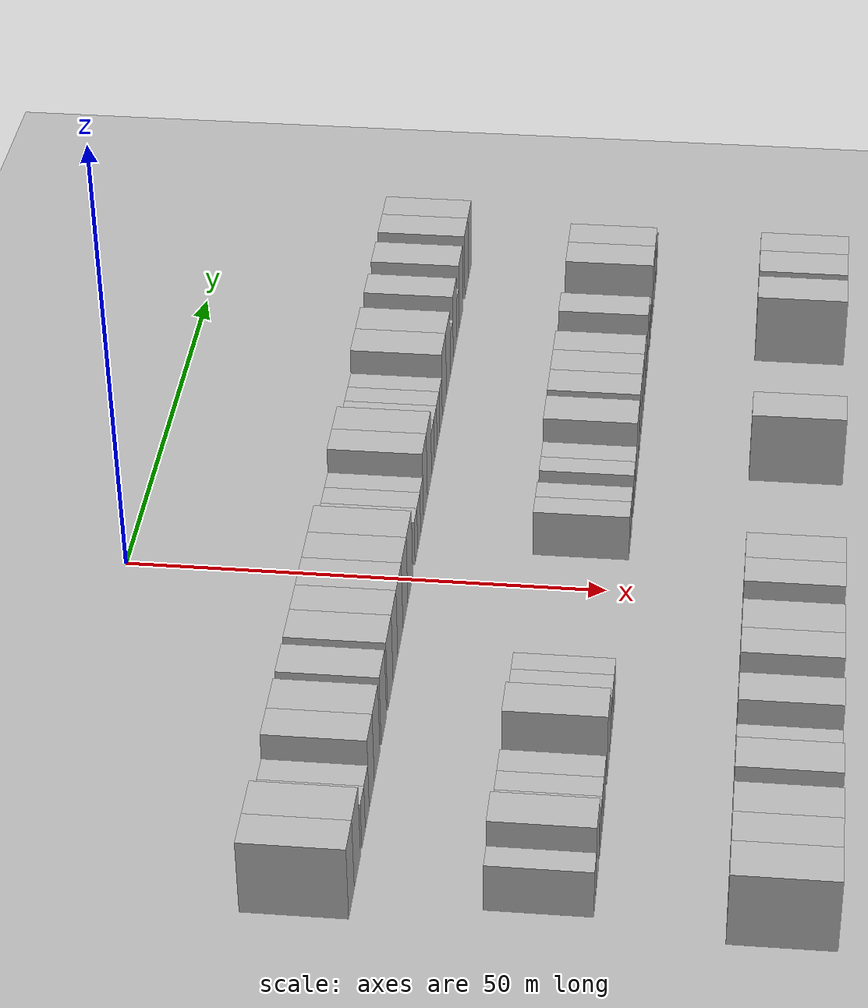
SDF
<sdf version="1.6">
 <world name="default">
  <include><name>ground_plane_1</name><uri>model://HANNAS_ground_plane</uri></include>
  <include>
   <name>ground_plane_2</name>
   <uri>model://HANNAS_ground_plane</uri>
   <pose>100 0 0  0 0 0</pose>
  </include>
  <model name="building_43">
   <static>1</static>
   <pose>25.0000 -48.3814 0 0.000000 0.000000 0.000000</pose>
   <link name="link">
    <pose>0 0 4.50 0 0 0</pose>
    <collision name="collision"><geometry><box><size>10.0000 3.8710 9.0000</size></box></geometry></collision>
    <visual name="visual">
     <cast_shadows>0</cast_shadows>
     <geometry><box><size>10.0000 3.8710 9.0000</size></box></geometry>
     <material>
      <script>
       <uri>model://HANNAS_wall/materials/scripts</uri>
       <uri>model://HANNAS_wall/materials/textures</uri>
       <name>vrc/HANNAS_wall</name>
      </script>
     </material>
    </visual>
   </link>
  </model>
  <model name="building_44">
   <static>1</static>
   <pose>25.0000 -44.2423 0 0.000000 0.000000 0.000000</pose>
   <link name="link">
    <pose>0 0 4.50 0 0 0</pose>
    <collision name="collision"><geometry><box><size>10.0000 4.4073 9.0000</size></box></geometry></collision>
    <visual name="visual">
     <cast_shadows>0</cast_shadows>
     <geometry><box><size>10.0000 4.4073 9.0000</size></box></geometry>
     <material>
      <script>
       <uri>model://HANNAS_wall/materials/scripts</uri>
       <uri>model://HANNAS_wall/materials/textures</uri>
       <name>vrc/HANNAS_wall</name>
      </script>
     </material>
    </visual>
   </link>
  </model>
  <model name="building_45">
   <static>1</static>
   <pose>25.0000 -39.7724 0 0.000000 0.000000 0.000000</pose>
   <link name="link">
    <pose>0 0 3.00 0 0 0</pose>
    <collision name="collision"><geometry><box><size>10.0000 2.5324 6.0000</size></box></geometry></collision>
    <visual name="visual">
     <cast_shadows>0</cast_shadows>
     <geometry><box><size>10.0000 2.5324 6.0000</size></box></geometry>
     <material>
      <script>
       <uri>model://HANNAS_wall/materials/scripts</uri>
       <uri>model://HANNAS_wall/materials/textures</uri>
       <name>vrc/HANNAS_wall</name>
      </script>
     </material>
    </visual>
   </link>
  </model>
  <model name="building_46">
   <static>1</static>
   <pose>25.0000 -37.0721 0 0.000000 0.000000 0.000000</pose>
   <link name="link">
    <pose>0 0 3.00 0 0 0</pose>
    <collision name="collision"><geometry><box><size>10.0000 2.8682 6.0000</size></box></geometry></collision>
    <visual name="visual">
     <cast_shadows>0</cast_shadows>
     <geometry><box><size>10.0000 2.8682 6.0000</size></box></geometry>
     <material>
      <script>
       <uri>model://HANNAS_wall/materials/scripts</uri>
       <uri>model://HANNAS_wall/materials/textures</uri>
       <name>vrc/HANNAS_wall</name>
      </script>
     </material>
    </visual>
   </link>
  </model>
  <model name="building_47">
   <static>1</static>
   <pose>25.0000 -33.7285 0 0.000000 0.000000 0.000000</pose>
   <link name="link">
    <pose>0 0 4.50 0 0 0</pose>
    <collision name="collision"><geometry><box><size>10.0000 3.8191 9.0000</size></box></geometry></collision>
    <visual name="visual">
     <cast_shadows>0</cast_shadows>
     <geometry><box><size>10.0000 3.8191 9.0000</size></box></geometry>
     <material>
      <script>
       <uri>model://HANNAS_wall/materials/scripts</uri>
       <uri>model://HANNAS_wall/materials/textures</uri>
       <name>vrc/HANNAS_wall</name>
      </script>
     </material>
    </visual>
   </link>
  </model>
  <model name="building_48">
   <static>1</static>
   <pose>25.0000 -29.6810 0 0.000000 0.000000 0.000000</pose>
   <link name="link">
    <pose>0 0 4.50 0 0 0</pose>
    <collision name="collision"><geometry><box><size>10.0000 4.2759 9.0000</size></box></geometry></collision>
    <visual name="visual">
     <cast_shadows>0</cast_shadows>
     <geometry><box><size>10.0000 4.2759 9.0000</size></box></geometry>
     <material>
      <script>
       <uri>model://HANNAS_wall/materials/scripts</uri>
       <uri>model://HANNAS_wall/materials/textures</uri>
       <name>vrc/HANNAS_wall</name>
      </script>
     </material>
    </visual>
   </link>
  </model>
  <model name="building_49">
   <static>1</static>
   <pose>25.0000 -24.4441 0 0.000000 0.000000 0.000000</pose>
   <link name="link">
    <pose>0 0 4.50 0 0 0</pose>
    <collision name="collision"><geometry><box><size>10.0000 4.1980 9.0000</size></box></geometry></collision>
    <visual name="visual">
     <cast_shadows>0</cast_shadows>
     <geometry><box><size>10.0000 4.1980 9.0000</size></box></geometry>
     <material>
      <script>
       <uri>model://HANNAS_wall/materials/scripts</uri>
       <uri>model://HANNAS_wall/materials/textures</uri>
       <name>vrc/HANNAS_wall</name>
      </script>
     </material>
    </visual>
   </link>
  </model>
  <model name="building_50">
   <static>1</static>
   <pose>25.0000 -19.1880 0 0.000000 0.000000 0.000000</pose>
   <link name="link">
    <pose>0 0 4.50 0 0 0</pose>
    <collision name="collision"><geometry><box><size>10.0000 4.3142 9.0000</size></box></geometry></collision>
    <visual name="visual">
     <cast_shadows>0</cast_shadows>
     <geometry><box><size>10.0000 4.3142 9.0000</size></box></geometry>
     <material>
      <script>
       <uri>model://HANNAS_wall/materials/scripts</uri>
       <uri>model://HANNAS_wall/materials/textures</uri>
       <name>vrc/HANNAS_wall</name>
      </script>
     </material>
    </visual>
   </link>
  </model>
  <model name="building_51">
   <static>1</static>
   <pose>25.0000 -15.0882 0 0.000000 0.000000 0.000000</pose>
   <link name="link">
    <pose>0 0 4.50 0 0 0</pose>
    <collision name="collision"><geometry><box><size>10.0000 3.8855 9.0000</size></box></geometry></collision>
    <visual name="visual">
     <cast_shadows>0</cast_shadows>
     <geometry><box><size>10.0000 3.8855 9.0000</size></box></geometry>
     <material>
      <script>
       <uri>model://HANNAS_wall/materials/scripts</uri>
       <uri>model://HANNAS_wall/materials/textures</uri>
       <name>vrc/HANNAS_wall</name>
      </script>
     </material>
    </visual>
   </link>
  </model>
  <model name="building_52">
   <static>1</static>
   <pose>25.0000 -10.9371 0 0.000000 0.000000 0.000000</pose>
   <link name="link">
    <pose>0 0 4.50 0 0 0</pose>
    <collision name="collision"><geometry><box><size>10.0000 4.4168 9.0000</size></box></geometry></collision>
    <visual name="visual">
     <cast_shadows>0</cast_shadows>
     <geometry><box><size>10.0000 4.4168 9.0000</size></box></geometry>
     <material>
      <script>
       <uri>model://HANNAS_wall/materials/scripts</uri>
       <uri>model://HANNAS_wall/materials/textures</uri>
       <name>vrc/HANNAS_wall</name>
      </script>
     </material>
    </visual>
   </link>
  </model>
  <model name="building_53">
   <static>1</static>
   <pose>25.0000 -6.6403 0 0.000000 0.000000 0.000000</pose>
   <link name="link">
    <pose>0 0 4.50 0 0 0</pose>
    <collision name="collision"><geometry><box><size>10.0000 4.1767 9.0000</size></box></geometry></collision>
    <visual name="visual">
     <cast_shadows>0</cast_shadows>
     <geometry><box><size>10.0000 4.1767 9.0000</size></box></geometry>
     <material>
      <script>
       <uri>model://HANNAS_wall/materials/scripts</uri>
       <uri>model://HANNAS_wall/materials/textures</uri>
       <name>vrc/HANNAS_wall</name>
      </script>
     </material>
    </visual>
   </link>
  </model>
  <model name="building_54">
   <static>1</static>
   <pose>25.0000 -2.3308 0 0.000000 0.000000 0.000000</pose>
   <link name="link">
    <pose>0 0 4.50 0 0 0</pose>
    <collision name="collision"><geometry><box><size>10.0000 4.4424 9.0000</size></box></geometry></collision>
    <visual name="visual">
     <cast_shadows>0</cast_shadows>
     <geometry><box><size>10.0000 4.4424 9.0000</size></box></geometry>
     <material>
      <script>
       <uri>model://HANNAS_wall/materials/scripts</uri>
       <uri>model://HANNAS_wall/materials/textures</uri>
       <name>vrc/HANNAS_wall</name>
      </script>
     </material>
    </visual>
   </link>
  </model>
  <model name="building_55">
   <static>1</static>
   <pose>25.0000 3.1088 0 0.000000 0.000000 0.000000</pose>
   <link name="link">
    <pose>0 0 3.00 0 0 0</pose>
    <collision name="collision"><geometry><box><size>10.0000 2.4368 6.0000</size></box></geometry></collision>
    <visual name="visual">
     <cast_shadows>0</cast_shadows>
     <geometry><box><size>10.0000 2.4368 6.0000</size></box></geometry>
     <material>
      <script>
       <uri>model://HANNAS_wall/materials/scripts</uri>
       <uri>model://HANNAS_wall/materials/textures</uri>
       <name>vrc/HANNAS_wall</name>
      </script>
     </material>
    </visual>
   </link>
  </model>
  <model name="building_56">
   <static>1</static>
   <pose>25.0000 5.7074 0 0.000000 0.000000 0.000000</pose>
   <link name="link">
    <pose>0 0 3.00 0 0 0</pose>
    <collision name="collision"><geometry><box><size>10.0000 2.7605 6.0000</size></box></geometry></collision>
    <visual name="visual">
     <cast_shadows>0</cast_shadows>
     <geometry><box><size>10.0000 2.7605 6.0000</size></box></geometry>
     <material>
      <script>
       <uri>model://HANNAS_wall/materials/scripts</uri>
       <uri>model://HANNAS_wall/materials/textures</uri>
       <name>vrc/HANNAS_wall</name>
      </script>
     </material>
    </visual>
   </link>
  </model>
  <model name="building_57">
   <static>1</static>
   <pose>25.0000 8.3930 0 0.000000 0.000000 0.000000</pose>
   <link name="link">
    <pose>0 0 3.00 0 0 0</pose>
    <collision name="collision"><geometry><box><size>10.0000 2.6108 6.0000</size></box></geometry></collision>
    <visual name="visual">
     <cast_shadows>0</cast_shadows>
     <geometry><box><size>10.0000 2.6108 6.0000</size></box></geometry>
     <material>
      <script>
       <uri>model://HANNAS_wall/materials/scripts</uri>
       <uri>model://HANNAS_wall/materials/textures</uri>
       <name>vrc/HANNAS_wall</name>
      </script>
     </material>
    </visual>
   </link>
  </model>
  <model name="building_58">
   <static>1</static>
   <pose>25.0000 11.5566 0 0.000000 0.000000 0.000000</pose>
   <link name="link">
    <pose>0 0 4.50 0 0 0</pose>
    <collision name="collision"><geometry><box><size>10.0000 3.7163 9.0000</size></box></geometry></collision>
    <visual name="visual">
     <cast_shadows>0</cast_shadows>
     <geometry><box><size>10.0000 3.7163 9.0000</size></box></geometry>
     <material>
      <script>
       <uri>model://HANNAS_wall/materials/scripts</uri>
       <uri>model://HANNAS_wall/materials/textures</uri>
       <name>vrc/HANNAS_wall</name>
      </script>
     </material>
    </visual>
   </link>
  </model>
  <model name="building_59">
   <static>1</static>
   <pose>25.0000 15.4387 0 0.000000 0.000000 0.000000</pose>
   <link name="link">
    <pose>0 0 4.50 0 0 0</pose>
    <collision name="collision"><geometry><box><size>10.0000 4.0480 9.0000</size></box></geometry></collision>
    <visual name="visual">
     <cast_shadows>0</cast_shadows>
     <geometry><box><size>10.0000 4.0480 9.0000</size></box></geometry>
     <material>
      <script>
       <uri>model://HANNAS_wall/materials/scripts</uri>
       <uri>model://HANNAS_wall/materials/textures</uri>
       <name>vrc/HANNAS_wall</name>
      </script>
     </material>
    </visual>
   </link>
  </model>
  <model name="building_60">
   <static>1</static>
   <pose>25.0000 18.8469 0 0.000000 0.000000 0.000000</pose>
   <link name="link">
    <pose>0 0 3.00 0 0 0</pose>
    <collision name="collision"><geometry><box><size>10.0000 2.7684 6.0000</size></box></geometry></collision>
    <visual name="visual">
     <cast_shadows>0</cast_shadows>
     <geometry><box><size>10.0000 2.7684 6.0000</size></box></geometry>
     <material>
      <script>
       <uri>model://HANNAS_wall/materials/scripts</uri>
       <uri>model://HANNAS_wall/materials/textures</uri>
       <name>vrc/HANNAS_wall</name>
      </script>
     </material>
    </visual>
   </link>
  </model>
  <model name="building_61">
   <static>1</static>
   <pose>25.0000 21.5333 0 0.000000 0.000000 0.000000</pose>
   <link name="link">
    <pose>0 0 3.00 0 0 0</pose>
    <collision name="collision"><geometry><box><size>10.0000 2.6043 6.0000</size></box></geometry></collision>
    <visual name="visual">
     <cast_shadows>0</cast_shadows>
     <geometry><box><size>10.0000 2.6043 6.0000</size></box></geometry>
     <material>
      <script>
       <uri>model://HANNAS_wall/materials/scripts</uri>
       <uri>model://HANNAS_wall/materials/textures</uri>
       <name>vrc/HANNAS_wall</name>
      </script>
     </material>
    </visual>
   </link>
  </model>
  <model name="building_62">
   <static>1</static>
   <pose>25.0000 24.1738 0 0.000000 0.000000 0.000000</pose>
   <link name="link">
    <pose>0 0 3.00 0 0 0</pose>
    <collision name="collision"><geometry><box><size>10.0000 2.6767 6.0000</size></box></geometry></collision>
    <visual name="visual">
     <cast_shadows>0</cast_shadows>
     <geometry><box><size>10.0000 2.6767 6.0000</size></box></geometry>
     <material>
      <script>
       <uri>model://HANNAS_wall/materials/scripts</uri>
       <uri>model://HANNAS_wall/materials/textures</uri>
       <name>vrc/HANNAS_wall</name>
      </script>
     </material>
    </visual>
   </link>
  </model>
  <model name="building_63">
   <static>1</static>
   <pose>25.0000 26.8311 0 0.000000 0.000000 0.000000</pose>
   <link name="link">
    <pose>0 0 3.00 0 0 0</pose>
    <collision name="collision"><geometry><box><size>10.0000 2.6379 6.0000</size></box></geometry></collision>
    <visual name="visual">
     <cast_shadows>0</cast_shadows>
     <geometry><box><size>10.0000 2.6379 6.0000</size></box></geometry>
     <material>
      <script>
       <uri>model://HANNAS_wall/materials/scripts</uri>
       <uri>model://HANNAS_wall/materials/textures</uri>
       <name>vrc/HANNAS_wall</name>
      </script>
     </material>
    </visual>
   </link>
  </model>
  <model name="building_64">
   <static>1</static>
   <pose>25.0000 30.3146 0 0.000000 0.000000 0.000000</pose>
   <link name="link">
    <pose>0 0 4.50 0 0 0</pose>
    <collision name="collision"><geometry><box><size>10.0000 4.3291 9.0000</size></box></geometry></collision>
    <visual name="visual">
     <cast_shadows>0</cast_shadows>
     <geometry><box><size>10.0000 4.3291 9.0000</size></box></geometry>
     <material>
      <script>
       <uri>model://HANNAS_wall/materials/scripts</uri>
       <uri>model://HANNAS_wall/materials/textures</uri>
       <name>vrc/HANNAS_wall</name>
      </script>
     </material>
    </visual>
   </link>
  </model>
  <model name="building_65">
   <static>1</static>
   <pose>25.0000 34.6429 0 0.000000 0.000000 0.000000</pose>
   <link name="link">
    <pose>0 0 4.50 0 0 0</pose>
    <collision name="collision"><geometry><box><size>10.0000 4.3274 9.0000</size></box></geometry></collision>
    <visual name="visual">
     <cast_shadows>0</cast_shadows>
     <geometry><box><size>10.0000 4.3274 9.0000</size></box></geometry>
     <material>
      <script>
       <uri>model://HANNAS_wall/materials/scripts</uri>
       <uri>model://HANNAS_wall/materials/textures</uri>
       <name>vrc/HANNAS_wall</name>
      </script>
     </material>
    </visual>
   </link>
  </model>
  <model name="building_66">
   <static>1</static>
   <pose>25.0000 38.2736 0 0.000000 0.000000 0.000000</pose>
   <link name="link">
    <pose>0 0 3.00 0 0 0</pose>
    <collision name="collision"><geometry><box><size>10.0000 2.9341 6.0000</size></box></geometry></collision>
    <visual name="visual">
     <cast_shadows>0</cast_shadows>
     <geometry><box><size>10.0000 2.9341 6.0000</size></box></geometry>
     <material>
      <script>
       <uri>model://HANNAS_wall/materials/scripts</uri>
       <uri>model://HANNAS_wall/materials/textures</uri>
       <name>vrc/HANNAS_wall</name>
      </script>
     </material>
    </visual>
   </link>
  </model>
  <model name="building_67">
   <static>1</static>
   <pose>25.0000 41.7295 0 0.000000 0.000000 0.000000</pose>
   <link name="link">
    <pose>0 0 4.50 0 0 0</pose>
    <collision name="collision"><geometry><box><size>10.0000 3.9777 9.0000</size></box></geometry></collision>
    <visual name="visual">
     <cast_shadows>0</cast_shadows>
     <geometry><box><size>10.0000 3.9777 9.0000</size></box></geometry>
     <material>
      <script>
       <uri>model://HANNAS_wall/materials/scripts</uri>
       <uri>model://HANNAS_wall/materials/textures</uri>
       <name>vrc/HANNAS_wall</name>
      </script>
     </material>
    </visual>
   </link>
  </model>
  <model name="building_68">
   <static>1</static>
   <pose>25.0000 44.9699 0 0.000000 0.000000 0.000000</pose>
   <link name="link">
    <pose>0 0 3.00 0 0 0</pose>
    <collision name="collision"><geometry><box><size>10.0000 2.5031 6.0000</size></box></geometry></collision>
    <visual name="visual">
     <cast_shadows>0</cast_shadows>
     <geometry><box><size>10.0000 2.5031 6.0000</size></box></geometry>
     <material>
      <script>
       <uri>model://HANNAS_wall/materials/scripts</uri>
       <uri>model://HANNAS_wall/materials/textures</uri>
       <name>vrc/HANNAS_wall</name>
      </script>
     </material>
    </visual>
   </link>
  </model>
  <model name="building_69">
   <static>1</static>
   <pose>25.0000 48.3832 0 0.000000 0.000000 0.000000</pose>
   <link name="link">
    <pose>0 0 4.50 0 0 0</pose>
    <collision name="collision"><geometry><box><size>10.0000 4.3234 9.0000</size></box></geometry></collision>
    <visual name="visual">
     <cast_shadows>0</cast_shadows>
     <geometry><box><size>10.0000 4.3234 9.0000</size></box></geometry>
     <material>
      <script>
       <uri>model://HANNAS_wall/materials/scripts</uri>
       <uri>model://HANNAS_wall/materials/textures</uri>
       <name>vrc/HANNAS_wall</name>
      </script>
     </material>
    </visual>
   </link>
  </model>
  <model name="building_70">
   <static>1</static>
   <pose>25.0000 54.5720 0 0.000000 0.000000 0.000000</pose>
   <link name="link">
    <pose>0 0 4.50 0 0 0</pose>
    <collision name="collision"><geometry><box><size>10.0000 4.0543 9.0000</size></box></geometry></collision>
    <visual name="visual">
     <cast_shadows>0</cast_shadows>
     <geometry><box><size>10.0000 4.0543 9.0000</size></box></geometry>
     <material>
      <script>
       <uri>model://HANNAS_wall/materials/scripts</uri>
       <uri>model://HANNAS_wall/materials/textures</uri>
       <name>vrc/HANNAS_wall</name>
      </script>
     </material>
    </visual>
   </link>
  </model>
  <model name="building_71">
   <static>1</static>
   <pose>25.0000 58.5659 0 0.000000 0.000000 0.000000</pose>
   <link name="link">
    <pose>0 0 4.50 0 0 0</pose>
    <collision name="collision"><geometry><box><size>10.0000 3.9334 9.0000</size></box></geometry></collision>
    <visual name="visual">
     <cast_shadows>0</cast_shadows>
     <geometry><box><size>10.0000 3.9334 9.0000</size></box></geometry>
     <material>
      <script>
       <uri>model://HANNAS_wall/materials/scripts</uri>
       <uri>model://HANNAS_wall/materials/textures</uri>
       <name>vrc/HANNAS_wall</name>
      </script>
     </material>
    </visual>
   </link>
  </model>
  <model name="building_164">
   <static>1</static>
   <pose>47.0000 -46.7659 0 0.000000 0.000000 0.000000</pose>
   <link name="link">
    <pose>0 0 3.00 0 0 0</pose>
    <collision name="collision"><geometry><box><size>10.0000 2.6041 6.0000</size></box></geometry></collision>
    <visual name="visual">
     <cast_shadows>0</cast_shadows>
     <geometry><box><size>10.0000 2.6041 6.0000</size></box></geometry>
     <material>
      <script>
       <uri>model://HANNAS_wall/materials/scripts</uri>
       <uri>model://HANNAS_wall/materials/textures</uri>
       <name>vrc/HANNAS_wall</name>
      </script>
     </material>
    </visual>
   </link>
  </model>
  <model name="building_165">
   <static>1</static>
   <pose>47.0000 -43.4677 0 0.000000 0.000000 0.000000</pose>
   <link name="link">
    <pose>0 0 4.50 0 0 0</pose>
    <collision name="collision"><geometry><box><size>10.0000 3.9923 9.0000</size></box></geometry></collision>
    <visual name="visual">
     <cast_shadows>0</cast_shadows>
     <geometry><box><size>10.0000 3.9923 9.0000</size></box></geometry>
     <material>
      <script>
       <uri>model://HANNAS_wall/materials/scripts</uri>
       <uri>model://HANNAS_wall/materials/textures</uri>
       <name>vrc/HANNAS_wall</name>
      </script>
     </material>
    </visual>
   </link>
  </model>
  <model name="building_166">
   <static>1</static>
   <pose>47.0000 -39.1798 0 0.000000 0.000000 0.000000</pose>
   <link name="link">
    <pose>0 0 3.00 0 0 0</pose>
    <collision name="collision"><geometry><box><size>10.0000 2.5837 6.0000</size></box></geometry></collision>
    <visual name="visual">
     <cast_shadows>0</cast_shadows>
     <geometry><box><size>10.0000 2.5837 6.0000</size></box></geometry>
     <material>
      <script>
       <uri>model://HANNAS_wall/materials/scripts</uri>
       <uri>model://HANNAS_wall/materials/textures</uri>
       <name>vrc/HANNAS_wall</name>
      </script>
     </material>
    </visual>
   </link>
  </model>
  <model name="building_167">
   <static>1</static>
   <pose>47.0000 -36.5689 0 0.000000 0.000000 0.000000</pose>
   <link name="link">
    <pose>0 0 3.00 0 0 0</pose>
    <collision name="collision"><geometry><box><size>10.0000 2.6381 6.0000</size></box></geometry></collision>
    <visual name="visual">
     <cast_shadows>0</cast_shadows>
     <geometry><box><size>10.0000 2.6381 6.0000</size></box></geometry>
     <material>
      <script>
       <uri>model://HANNAS_wall/materials/scripts</uri>
       <uri>model://HANNAS_wall/materials/textures</uri>
       <name>vrc/HANNAS_wall</name>
      </script>
     </material>
    </visual>
   </link>
  </model>
  <model name="building_168">
   <static>1</static>
   <pose>47.0000 -33.7501 0 0.000000 0.000000 0.000000</pose>
   <link name="link">
    <pose>0 0 3.00 0 0 0</pose>
    <collision name="collision"><geometry><box><size>10.0000 2.9996 6.0000</size></box></geometry></collision>
    <visual name="visual">
     <cast_shadows>0</cast_shadows>
     <geometry><box><size>10.0000 2.9996 6.0000</size></box></geometry>
     <material>
      <script>
       <uri>model://HANNAS_wall/materials/scripts</uri>
       <uri>model://HANNAS_wall/materials/textures</uri>
       <name>vrc/HANNAS_wall</name>
      </script>
     </material>
    </visual>
   </link>
  </model>
  <model name="building_169">
   <static>1</static>
   <pose>47.0000 -28.1385 0 0.000000 0.000000 0.000000</pose>
   <link name="link">
    <pose>0 0 4.50 0 0 0</pose>
    <collision name="collision"><geometry><box><size>10.0000 4.2236 9.0000</size></box></geometry></collision>
    <visual name="visual">
     <cast_shadows>0</cast_shadows>
     <geometry><box><size>10.0000 4.2236 9.0000</size></box></geometry>
     <material>
      <script>
       <uri>model://HANNAS_wall/materials/scripts</uri>
       <uri>model://HANNAS_wall/materials/textures</uri>
       <name>vrc/HANNAS_wall</name>
      </script>
     </material>
    </visual>
   </link>
  </model>
  <model name="building_170">
   <static>1</static>
   <pose>47.0000 -24.6388 0 0.000000 0.000000 0.000000</pose>
   <link name="link">
    <pose>0 0 3.00 0 0 0</pose>
    <collision name="collision"><geometry><box><size>10.0000 2.7757 6.0000</size></box></geometry></collision>
    <visual name="visual">
     <cast_shadows>0</cast_shadows>
     <geometry><box><size>10.0000 2.7757 6.0000</size></box></geometry>
     <material>
      <script>
       <uri>model://HANNAS_wall/materials/scripts</uri>
       <uri>model://HANNAS_wall/materials/textures</uri>
       <name>vrc/HANNAS_wall</name>
      </script>
     </material>
    </visual>
   </link>
  </model>
  <model name="building_171">
   <static>1</static>
   <pose>47.0000 -21.8657 0 0.000000 0.000000 0.000000</pose>
   <link name="link">
    <pose>0 0 3.00 0 0 0</pose>
    <collision name="collision"><geometry><box><size>10.0000 2.7704 6.0000</size></box></geometry></collision>
    <visual name="visual">
     <cast_shadows>0</cast_shadows>
     <geometry><box><size>10.0000 2.7704 6.0000</size></box></geometry>
     <material>
      <script>
       <uri>model://HANNAS_wall/materials/scripts</uri>
       <uri>model://HANNAS_wall/materials/textures</uri>
       <name>vrc/HANNAS_wall</name>
      </script>
     </material>
    </visual>
   </link>
  </model>
  <model name="building_172">
   <static>1</static>
   <pose>47.0000 -19.2337 0 0.000000 0.000000 0.000000</pose>
   <link name="link">
    <pose>0 0 3.00 0 0 0</pose>
    <collision name="collision"><geometry><box><size>10.0000 2.4936 6.0000</size></box></geometry></collision>
    <visual name="visual">
     <cast_shadows>0</cast_shadows>
     <geometry><box><size>10.0000 2.4936 6.0000</size></box></geometry>
     <material>
      <script>
       <uri>model://HANNAS_wall/materials/scripts</uri>
       <uri>model://HANNAS_wall/materials/textures</uri>
       <name>vrc/HANNAS_wall</name>
      </script>
     </material>
    </visual>
   </link>
  </model>
  <model name="building_173">
   <static>1</static>
   <pose>47.0000 6.1162 0 0.000000 0.000000 0.000000</pose>
   <link name="link">
    <pose>0 0 3.00 0 0 0</pose>
    <collision name="collision"><geometry><box><size>10.0000 2.7354 6.0000</size></box></geometry></collision>
    <visual name="visual">
     <cast_shadows>0</cast_shadows>
     <geometry><box><size>10.0000 2.7354 6.0000</size></box></geometry>
     <material>
      <script>
       <uri>model://HANNAS_wall/materials/scripts</uri>
       <uri>model://HANNAS_wall/materials/textures</uri>
       <name>vrc/HANNAS_wall</name>
      </script>
     </material>
    </visual>
   </link>
  </model>
  <model name="building_174">
   <static>1</static>
   <pose>47.0000 8.7648 0 0.000000 0.000000 0.000000</pose>
   <link name="link">
    <pose>0 0 3.00 0 0 0</pose>
    <collision name="collision"><geometry><box><size>10.0000 2.5617 6.0000</size></box></geometry></collision>
    <visual name="visual">
     <cast_shadows>0</cast_shadows>
     <geometry><box><size>10.0000 2.5617 6.0000</size></box></geometry>
     <material>
      <script>
       <uri>model://HANNAS_wall/materials/scripts</uri>
       <uri>model://HANNAS_wall/materials/textures</uri>
       <name>vrc/HANNAS_wall</name>
      </script>
     </material>
    </visual>
   </link>
  </model>
  <model name="building_175">
   <static>1</static>
   <pose>47.0000 13.3055 0 0.000000 0.000000 0.000000</pose>
   <link name="link">
    <pose>0 0 3.00 0 0 0</pose>
    <collision name="collision"><geometry><box><size>10.0000 2.5199 6.0000</size></box></geometry></collision>
    <visual name="visual">
     <cast_shadows>0</cast_shadows>
     <geometry><box><size>10.0000 2.5199 6.0000</size></box></geometry>
     <material>
      <script>
       <uri>model://HANNAS_wall/materials/scripts</uri>
       <uri>model://HANNAS_wall/materials/textures</uri>
       <name>vrc/HANNAS_wall</name>
      </script>
     </material>
    </visual>
   </link>
  </model>
  <model name="building_176">
   <static>1</static>
   <pose>47.0000 15.9219 0 0.000000 0.000000 0.000000</pose>
   <link name="link">
    <pose>0 0 3.00 0 0 0</pose>
    <collision name="collision"><geometry><box><size>10.0000 2.7128 6.0000</size></box></geometry></collision>
    <visual name="visual">
     <cast_shadows>0</cast_shadows>
     <geometry><box><size>10.0000 2.7128 6.0000</size></box></geometry>
     <material>
      <script>
       <uri>model://HANNAS_wall/materials/scripts</uri>
       <uri>model://HANNAS_wall/materials/textures</uri>
       <name>vrc/HANNAS_wall</name>
      </script>
     </material>
    </visual>
   </link>
  </model>
  <model name="building_177">
   <static>1</static>
   <pose>47.0000 19.4362 0 0.000000 0.000000 0.000000</pose>
   <link name="link">
    <pose>0 0 4.50 0 0 0</pose>
    <collision name="collision"><geometry><box><size>10.0000 4.3158 9.0000</size></box></geometry></collision>
    <visual name="visual">
     <cast_shadows>0</cast_shadows>
     <geometry><box><size>10.0000 4.3158 9.0000</size></box></geometry>
     <material>
      <script>
       <uri>model://HANNAS_wall/materials/scripts</uri>
       <uri>model://HANNAS_wall/materials/textures</uri>
       <name>vrc/HANNAS_wall</name>
      </script>
     </material>
    </visual>
   </link>
  </model>
  <model name="building_178">
   <static>1</static>
   <pose>47.0000 24.5694 0 0.000000 0.000000 0.000000</pose>
   <link name="link">
    <pose>0 0 4.50 0 0 0</pose>
    <collision name="collision"><geometry><box><size>10.0000 3.9504 9.0000</size></box></geometry></collision>
    <visual name="visual">
     <cast_shadows>0</cast_shadows>
     <geometry><box><size>10.0000 3.9504 9.0000</size></box></geometry>
     <material>
      <script>
       <uri>model://HANNAS_wall/materials/scripts</uri>
       <uri>model://HANNAS_wall/materials/textures</uri>
       <name>vrc/HANNAS_wall</name>
      </script>
     </material>
    </visual>
   </link>
  </model>
  <model name="building_179">
   <static>1</static>
   <pose>47.0000 28.4718 0 0.000000 0.000000 0.000000</pose>
   <link name="link">
    <pose>0 0 4.50 0 0 0</pose>
    <collision name="collision"><geometry><box><size>10.0000 3.8545 9.0000</size></box></geometry></collision>
    <visual name="visual">
     <cast_shadows>0</cast_shadows>
     <geometry><box><size>10.0000 3.8545 9.0000</size></box></geometry>
     <material>
      <script>
       <uri>model://HANNAS_wall/materials/scripts</uri>
       <uri>model://HANNAS_wall/materials/textures</uri>
       <name>vrc/HANNAS_wall</name>
      </script>
     </material>
    </visual>
   </link>
  </model>
  <model name="building_180">
   <static>1</static>
   <pose>47.0000 32.2656 0 0.000000 0.000000 0.000000</pose>
   <link name="link">
    <pose>0 0 4.50 0 0 0</pose>
    <collision name="collision"><geometry><box><size>10.0000 3.7331 9.0000</size></box></geometry></collision>
    <visual name="visual">
     <cast_shadows>0</cast_shadows>
     <geometry><box><size>10.0000 3.7331 9.0000</size></box></geometry>
     <material>
      <script>
       <uri>model://HANNAS_wall/materials/scripts</uri>
       <uri>model://HANNAS_wall/materials/textures</uri>
       <name>vrc/HANNAS_wall</name>
      </script>
     </material>
    </visual>
   </link>
  </model>
  <model name="building_181">
   <static>1</static>
   <pose>47.0000 35.5839 0 0.000000 0.000000 0.000000</pose>
   <link name="link">
    <pose>0 0 3.00 0 0 0</pose>
    <collision name="collision"><geometry><box><size>10.0000 2.9035 6.0000</size></box></geometry></collision>
    <visual name="visual">
     <cast_shadows>0</cast_shadows>
     <geometry><box><size>10.0000 2.9035 6.0000</size></box></geometry>
     <material>
      <script>
       <uri>model://HANNAS_wall/materials/scripts</uri>
       <uri>model://HANNAS_wall/materials/textures</uri>
       <name>vrc/HANNAS_wall</name>
      </script>
     </material>
    </visual>
   </link>
  </model>
  <model name="building_182">
   <static>1</static>
   <pose>47.0000 39.9264 0 0.000000 0.000000 0.000000</pose>
   <link name="link">
    <pose>0 0 4.50 0 0 0</pose>
    <collision name="collision"><geometry><box><size>10.0000 3.7814 9.0000</size></box></geometry></collision>
    <visual name="visual">
     <cast_shadows>0</cast_shadows>
     <geometry><box><size>10.0000 3.7814 9.0000</size></box></geometry>
     <material>
      <script>
       <uri>model://HANNAS_wall/materials/scripts</uri>
       <uri>model://HANNAS_wall/materials/textures</uri>
       <name>vrc/HANNAS_wall</name>
      </script>
     </material>
    </visual>
   </link>
  </model>
  <model name="building_183">
   <static>1</static>
   <pose>47.0000 45.0619 0 0.000000 0.000000 0.000000</pose>
   <link name="link">
    <pose>0 0 3.00 0 0 0</pose>
    <collision name="collision"><geometry><box><size>10.0000 2.4895 6.0000</size></box></geometry></collision>
    <visual name="visual">
     <cast_shadows>0</cast_shadows>
     <geometry><box><size>10.0000 2.4895 6.0000</size></box></geometry>
     <material>
      <script>
       <uri>model://HANNAS_wall/materials/scripts</uri>
       <uri>model://HANNAS_wall/materials/textures</uri>
       <name>vrc/HANNAS_wall</name>
      </script>
     </material>
    </visual>
   </link>
  </model>
  <model name="building_184">
   <static>1</static>
   <pose>47.0000 50.4077 0 0.000000 0.000000 0.000000</pose>
   <link name="link">
    <pose>0 0 4.50 0 0 0</pose>
    <collision name="collision"><geometry><box><size>10.0000 4.2023 9.0000</size></box></geometry></collision>
    <visual name="visual">
     <cast_shadows>0</cast_shadows>
     <geometry><box><size>10.0000 4.2023 9.0000</size></box></geometry>
     <material>
      <script>
       <uri>model://HANNAS_wall/materials/scripts</uri>
       <uri>model://HANNAS_wall/materials/textures</uri>
       <name>vrc/HANNAS_wall</name>
      </script>
     </material>
    </visual>
   </link>
  </model>
  <model name="building_185">
   <static>1</static>
   <pose>47.0000 54.5090 0 0.000000 0.000000 0.000000</pose>
   <link name="link">
    <pose>0 0 4.50 0 0 0</pose>
    <collision name="collision"><geometry><box><size>10.0000 4.0002 9.0000</size></box></geometry></collision>
    <visual name="visual">
     <cast_shadows>0</cast_shadows>
     <geometry><box><size>10.0000 4.0002 9.0000</size></box></geometry>
     <material>
      <script>
       <uri>model://HANNAS_wall/materials/scripts</uri>
       <uri>model://HANNAS_wall/materials/textures</uri>
       <name>vrc/HANNAS_wall</name>
      </script>
     </material>
    </visual>
   </link>
  </model>
  <model name="building_186">
   <static>1</static>
   <pose>47.0000 58.8828 0 0.000000 0.000000 0.000000</pose>
   <link name="link">
    <pose>0 0 3.00 0 0 0</pose>
    <collision name="collision"><geometry><box><size>10.0000 2.7475 6.0000</size></box></geometry></collision>
    <visual name="visual">
     <cast_shadows>0</cast_shadows>
     <geometry><box><size>10.0000 2.7475 6.0000</size></box></geometry>
     <material>
      <script>
       <uri>model://HANNAS_wall/materials/scripts</uri>
       <uri>model://HANNAS_wall/materials/textures</uri>
       <name>vrc/HANNAS_wall</name>
      </script>
     </material>
    </visual>
   </link>
  </model>
  <model name="building_289">
   <static>1</static>
   <pose>69.0000 -48.1709 0 0.000000 0.000000 0.000000</pose>
   <link name="link">
    <pose>0 0 4.50 0 0 0</pose>
    <collision name="collision"><geometry><box><size>10.0000 4.4809 9.0000</size></box></geometry></collision>
    <visual name="visual">
     <cast_shadows>0</cast_shadows>
     <geometry><box><size>10.0000 4.4809 9.0000</size></box></geometry>
     <material>
      <script>
       <uri>model://HANNAS_wall/materials/scripts</uri>
       <uri>model://HANNAS_wall/materials/textures</uri>
       <name>vrc/HANNAS_wall</name>
      </script>
     </material>
    </visual>
   </link>
  </model>
  <model name="building_290">
   <static>1</static>
   <pose>69.0000 -44.0043 0 0.000000 0.000000 0.000000</pose>
   <link name="link">
    <pose>0 0 4.50 0 0 0</pose>
    <collision name="collision"><geometry><box><size>10.0000 3.8523 9.0000</size></box></geometry></collision>
    <visual name="visual">
     <cast_shadows>0</cast_shadows>
     <geometry><box><size>10.0000 3.8523 9.0000</size></box></geometry>
     <material>
      <script>
       <uri>model://HANNAS_wall/materials/scripts</uri>
       <uri>model://HANNAS_wall/materials/textures</uri>
       <name>vrc/HANNAS_wall</name>
      </script>
     </material>
    </visual>
   </link>
  </model>
  <model name="building_291">
   <static>1</static>
   <pose>69.0000 -40.0542 0 0.000000 0.000000 0.000000</pose>
   <link name="link">
    <pose>0 0 4.50 0 0 0</pose>
    <collision name="collision"><geometry><box><size>10.0000 4.0480 9.0000</size></box></geometry></collision>
    <visual name="visual">
     <cast_shadows>0</cast_shadows>
     <geometry><box><size>10.0000 4.0480 9.0000</size></box></geometry>
     <material>
      <script>
       <uri>model://HANNAS_wall/materials/scripts</uri>
       <uri>model://HANNAS_wall/materials/textures</uri>
       <name>vrc/HANNAS_wall</name>
      </script>
     </material>
    </visual>
   </link>
  </model>
  <model name="building_292">
   <static>1</static>
   <pose>69.0000 -33.9555 0 0.000000 0.000000 0.000000</pose>
   <link name="link">
    <pose>0 0 4.50 0 0 0</pose>
    <collision name="collision"><geometry><box><size>10.0000 4.1493 9.0000</size></box></geometry></collision>
    <visual name="visual">
     <cast_shadows>0</cast_shadows>
     <geometry><box><size>10.0000 4.1493 9.0000</size></box></geometry>
     <material>
      <script>
       <uri>model://HANNAS_wall/materials/scripts</uri>
       <uri>model://HANNAS_wall/materials/textures</uri>
       <name>vrc/HANNAS_wall</name>
      </script>
     </material>
    </visual>
   </link>
  </model>
  <model name="building_293">
   <static>1</static>
   <pose>69.0000 -30.5435 0 0.000000 0.000000 0.000000</pose>
   <link name="link">
    <pose>0 0 3.00 0 0 0</pose>
    <collision name="collision"><geometry><box><size>10.0000 2.6748 6.0000</size></box></geometry></collision>
    <visual name="visual">
     <cast_shadows>0</cast_shadows>
     <geometry><box><size>10.0000 2.6748 6.0000</size></box></geometry>
     <material>
      <script>
       <uri>model://HANNAS_wall/materials/scripts</uri>
       <uri>model://HANNAS_wall/materials/textures</uri>
       <name>vrc/HANNAS_wall</name>
      </script>
     </material>
    </visual>
   </link>
  </model>
  <model name="building_294">
   <static>1</static>
   <pose>69.0000 -27.8806 0 0.000000 0.000000 0.000000</pose>
   <link name="link">
    <pose>0 0 3.00 0 0 0</pose>
    <collision name="collision"><geometry><box><size>10.0000 2.6509 6.0000</size></box></geometry></collision>
    <visual name="visual">
     <cast_shadows>0</cast_shadows>
     <geometry><box><size>10.0000 2.6509 6.0000</size></box></geometry>
     <material>
      <script>
       <uri>model://HANNAS_wall/materials/scripts</uri>
       <uri>model://HANNAS_wall/materials/textures</uri>
       <name>vrc/HANNAS_wall</name>
      </script>
     </material>
    </visual>
   </link>
  </model>
  <model name="building_295">
   <static>1</static>
   <pose>69.0000 -24.5426 0 0.000000 0.000000 0.000000</pose>
   <link name="link">
    <pose>0 0 4.50 0 0 0</pose>
    <collision name="collision"><geometry><box><size>10.0000 4.0251 9.0000</size></box></geometry></collision>
    <visual name="visual">
     <cast_shadows>0</cast_shadows>
     <geometry><box><size>10.0000 4.0251 9.0000</size></box></geometry>
     <material>
      <script>
       <uri>model://HANNAS_wall/materials/scripts</uri>
       <uri>model://HANNAS_wall/materials/textures</uri>
       <name>vrc/HANNAS_wall</name>
      </script>
     </material>
    </visual>
   </link>
  </model>
  <model name="building_296">
   <static>1</static>
   <pose>69.0000 -21.0480 0 0.000000 0.000000 0.000000</pose>
   <link name="link">
    <pose>0 0 3.00 0 0 0</pose>
    <collision name="collision"><geometry><box><size>10.0000 2.9642 6.0000</size></box></geometry></collision>
    <visual name="visual">
     <cast_shadows>0</cast_shadows>
     <geometry><box><size>10.0000 2.9642 6.0000</size></box></geometry>
     <material>
      <script>
       <uri>model://HANNAS_wall/materials/scripts</uri>
       <uri>model://HANNAS_wall/materials/textures</uri>
       <name>vrc/HANNAS_wall</name>
      </script>
     </material>
    </visual>
   </link>
  </model>
  <model name="building_297">
   <static>1</static>
   <pose>69.0000 -17.6442 0 0.000000 0.000000 0.000000</pose>
   <link name="link">
    <pose>0 0 4.50 0 0 0</pose>
    <collision name="collision"><geometry><box><size>10.0000 3.8434 9.0000</size></box></geometry></collision>
    <visual name="visual">
     <cast_shadows>0</cast_shadows>
     <geometry><box><size>10.0000 3.8434 9.0000</size></box></geometry>
     <material>
      <script>
       <uri>model://HANNAS_wall/materials/scripts</uri>
       <uri>model://HANNAS_wall/materials/textures</uri>
       <name>vrc/HANNAS_wall</name>
      </script>
     </material>
    </visual>
   </link>
  </model>
  <model name="building_298">
   <static>1</static>
   <pose>69.0000 -13.5070 0 0.000000 0.000000 0.000000</pose>
   <link name="link">
    <pose>0 0 4.50 0 0 0</pose>
    <collision name="collision"><geometry><box><size>10.0000 4.4310 9.0000</size></box></geometry></collision>
    <visual name="visual">
     <cast_shadows>0</cast_shadows>
     <geometry><box><size>10.0000 4.4310 9.0000</size></box></geometry>
     <material>
      <script>
       <uri>model://HANNAS_wall/materials/scripts</uri>
       <uri>model://HANNAS_wall/materials/textures</uri>
       <name>vrc/HANNAS_wall</name>
      </script>
     </material>
    </visual>
   </link>
  </model>
  <model name="building_299">
   <static>1</static>
   <pose>69.0000 -9.8948 0 0.000000 0.000000 0.000000</pose>
   <link name="link">
    <pose>0 0 3.00 0 0 0</pose>
    <collision name="collision"><geometry><box><size>10.0000 2.7933 6.0000</size></box></geometry></collision>
    <visual name="visual">
     <cast_shadows>0</cast_shadows>
     <geometry><box><size>10.0000 2.7933 6.0000</size></box></geometry>
     <material>
      <script>
       <uri>model://HANNAS_wall/materials/scripts</uri>
       <uri>model://HANNAS_wall/materials/textures</uri>
       <name>vrc/HANNAS_wall</name>
      </script>
     </material>
    </visual>
   </link>
  </model>
  <model name="building_300">
   <static>1</static>
   <pose>69.0000 -6.5753 0 0.000000 0.000000 0.000000</pose>
   <link name="link">
    <pose>0 0 4.50 0 0 0</pose>
    <collision name="collision"><geometry><box><size>10.0000 3.8457 9.0000</size></box></geometry></collision>
    <visual name="visual">
     <cast_shadows>0</cast_shadows>
     <geometry><box><size>10.0000 3.8457 9.0000</size></box></geometry>
     <material>
      <script>
       <uri>model://HANNAS_wall/materials/scripts</uri>
       <uri>model://HANNAS_wall/materials/textures</uri>
       <name>vrc/HANNAS_wall</name>
      </script>
     </material>
    </visual>
   </link>
  </model>
  <model name="building_301">
   <static>1</static>
   <pose>69.0000 -2.6194 0 0.000000 0.000000 0.000000</pose>
   <link name="link">
    <pose>0 0 4.50 0 0 0</pose>
    <collision name="collision"><geometry><box><size>10.0000 4.0661 9.0000</size></box></geometry></collision>
    <visual name="visual">
     <cast_shadows>0</cast_shadows>
     <geometry><box><size>10.0000 4.0661 9.0000</size></box></geometry>
     <material>
      <script>
       <uri>model://HANNAS_wall/materials/scripts</uri>
       <uri>model://HANNAS_wall/materials/textures</uri>
       <name>vrc/HANNAS_wall</name>
      </script>
     </material>
    </visual>
   </link>
  </model>
  <model name="building_302">
   <static>1</static>
   <pose>69.0000 22.0986 0 0.000000 0.000000 0.000000</pose>
   <link name="link">
    <pose>0 0 4.50 0 0 0</pose>
    <collision name="collision"><geometry><box><size>10.0000 4.4566 9.0000</size></box></geometry></collision>
    <visual name="visual">
     <cast_shadows>0</cast_shadows>
     <geometry><box><size>10.0000 4.4566 9.0000</size></box></geometry>
     <material>
      <script>
       <uri>model://HANNAS_wall/materials/scripts</uri>
       <uri>model://HANNAS_wall/materials/textures</uri>
       <name>vrc/HANNAS_wall</name>
      </script>
     </material>
    </visual>
   </link>
  </model>
  <model name="building_303">
   <static>1</static>
   <pose>69.0000 45.0489 0 0.000000 0.000000 0.000000</pose>
   <link name="link">
    <pose>0 0 4.50 0 0 0</pose>
    <collision name="collision"><geometry><box><size>10.0000 4.4814 9.0000</size></box></geometry></collision>
    <visual name="visual">
     <cast_shadows>0</cast_shadows>
     <geometry><box><size>10.0000 4.4814 9.0000</size></box></geometry>
     <material>
      <script>
       <uri>model://HANNAS_wall/materials/scripts</uri>
       <uri>model://HANNAS_wall/materials/textures</uri>
       <name>vrc/HANNAS_wall</name>
      </script>
     </material>
    </visual>
   </link>
  </model>
  <model name="building_304">
   <static>1</static>
   <pose>69.0000 50.4906 0 0.000000 0.000000 0.000000</pose>
   <link name="link">
    <pose>0 0 4.50 0 0 0</pose>
    <collision name="collision"><geometry><box><size>10.0000 4.4019 9.0000</size></box></geometry></collision>
    <visual name="visual">
     <cast_shadows>0</cast_shadows>
     <geometry><box><size>10.0000 4.4019 9.0000</size></box></geometry>
     <material>
      <script>
       <uri>model://HANNAS_wall/materials/scripts</uri>
       <uri>model://HANNAS_wall/materials/textures</uri>
       <name>vrc/HANNAS_wall</name>
      </script>
     </material>
    </visual>
   </link>
  </model>
  <model name="building_305">
   <static>1</static>
   <pose>69.0000 54.6367 0 0.000000 0.000000 0.000000</pose>
   <link name="link">
    <pose>0 0 4.50 0 0 0</pose>
    <collision name="collision"><geometry><box><size>10.0000 3.8903 9.0000</size></box></geometry></collision>
    <visual name="visual">
     <cast_shadows>0</cast_shadows>
     <geometry><box><size>10.0000 3.8903 9.0000</size></box></geometry>
     <material>
      <script>
       <uri>model://HANNAS_wall/materials/scripts</uri>
       <uri>model://HANNAS_wall/materials/textures</uri>
       <name>vrc/HANNAS_wall</name>
      </script>
     </material>
    </visual>
   </link>
  </model>
  <model name="building_306">
   <static>1</static>
   <pose>69.0000 57.8345 0 0.000000 0.000000 0.000000</pose>
   <link name="link">
    <pose>0 0 3.00 0 0 0</pose>
    <collision name="collision"><geometry><box><size>10.0000 2.5053 6.0000</size></box></geometry></collision>
    <visual name="visual">
     <cast_shadows>0</cast_shadows>
     <geometry><box><size>10.0000 2.5053 6.0000</size></box></geometry>
     <material>
      <script>
       <uri>model://HANNAS_wall/materials/scripts</uri>
       <uri>model://HANNAS_wall/materials/textures</uri>
       <name>vrc/HANNAS_wall</name>
      </script>
     </material>
    </visual>
   </link>
  </model>
 </world>
</sdf>
